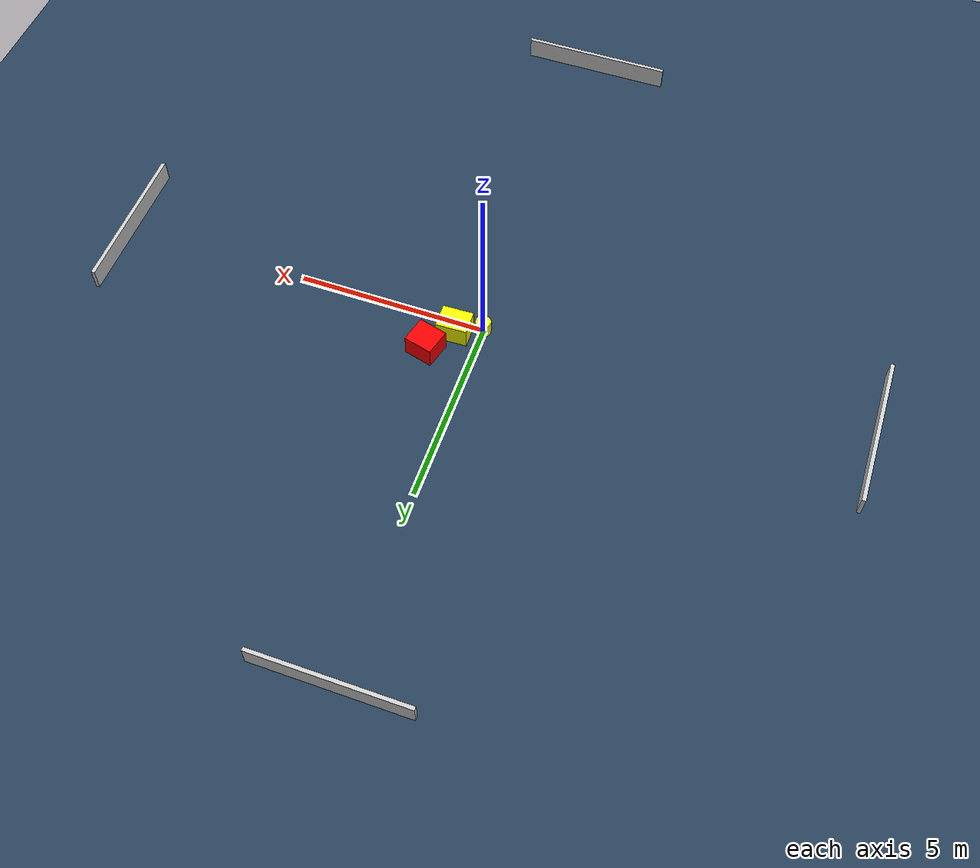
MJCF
<?xml version="1.0" ?>
<mujoco model="generated_environment">
  <option timestep="0.01" integrator="RK4" cone="elliptic"/>
  <default>
    <geom density="1"/>
  </default>
  <asset>
    <texture builtin="gradient" height="3072" name="skybox" rgb1="0.3 0.5 0.7" rgb2="0 0 0" type="skybox" width="512"/>
    <texture builtin="checker" height="300" name="groundplane" rgb1="0.2 0.3 0.4" rgb2="0.1 0.2 0.3" type="2d" width="300"/>
    <material name="groundplane" reflectance="0.2" texrepeat="5 5" texture="groundplane"/>
  </asset>
  <worldbody>
    <light dir="0 0 -1" directional="true" pos="0 0 1.5"/>
    <geom condim="3" friction="0.5 0.005 0.001" material="groundplane" name="floor" pos="0 0 0" size="0 0 0.05" type="plane"/>
    <body name="walls">
      <geom name="wall_1" condim="4" pos="-10.0 0.0 0.3" rgba="0.800000011920929 0.800000011920929 0.800000011920929 1.0" size="0.05 2.0 0.3" type="box"/>
      <geom name="wall_2" condim="4" pos="10.0 0.0 0.3" rgba="0.800000011920929 0.800000011920929 0.800000011920929 1.0" size="0.05 2.0 0.3" type="box"/>
      <geom name="wall_3" condim="4" pos="0.0 -10.0 0.3" rgba="0.800000011920929 0.800000011920929 0.800000011920929 1.0" size="2.0 0.05 0.3" type="box"/>
      <geom name="wall_4" condim="4" pos="0.0 10.0 0.3" rgba="0.800000011920929 0.800000011920929 0.800000011920929 1.0" size="2.0 0.05 0.3" type="box"/>
    </body>
    <body name="robot">
      <joint name="joint_x" type="slide" pos="0 0 0" axis="1 0 0"/>
      <joint name="joint_y" type="slide" pos="0 0 0" axis="0 1 0"/>
      <geom name="robot" type="cylinder" pos="0.0 0.0 0.2" size="0.2 0.2 0.0" mass="5.0" friction="1.0 0.005 0.0001" condim="4" rgba="1.0 1.0 0.0 1.0"/>
    </body>
    <body name="obstacle_1_movable">
      <geom name="obstacle_1_movable" condim="4" pos="0.6664264100873738 0.2871934108659214 0.3" euler="0 0 91.73039307545297" friction="0.0 0.005 0.001" rgba="1.0 1.0 0.0 1.0" size="0.31296988486355354 0.40673931965688387 0.3" type="box" mass="0.1"/>
      <joint type="free"/>
    </body>
    <body name="obstacle_2_static">
      <geom name="obstacle_2_static" condim="4" pos="1.1833561748696828 1.0160356461074285 0.3" euler="0 0 165.4678149269932" friction="0.0 0.005 0.001" rgba="1.0 0.0 0.0 1.0" size="0.3835285092450913 0.3489454586064977 0.3" type="box"/>
    </body>
  </worldbody>
  <actuator>
    <motor name="actuator_x" joint="joint_x" gear="1" ctrlrange="-1 1"/>
    <motor name="actuator_y" joint="joint_y" gear="1" ctrlrange="-1 1"/>
  </actuator>
</mujoco>
